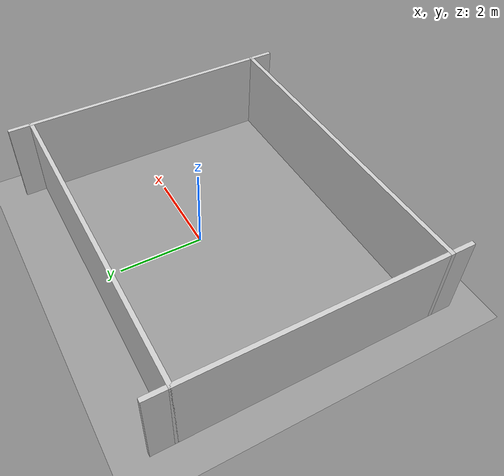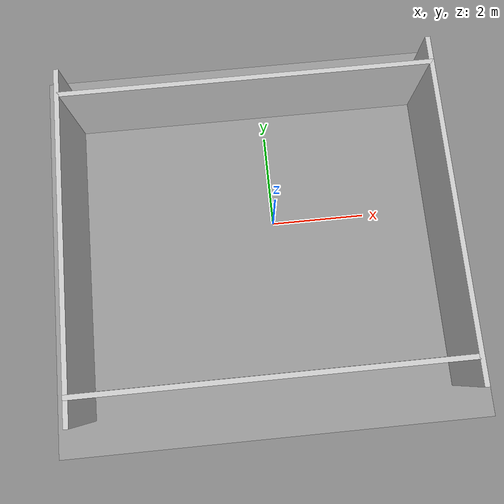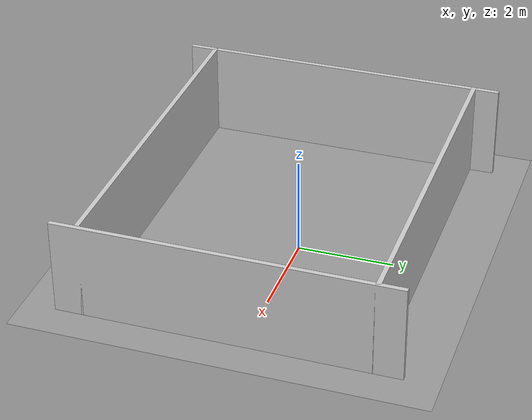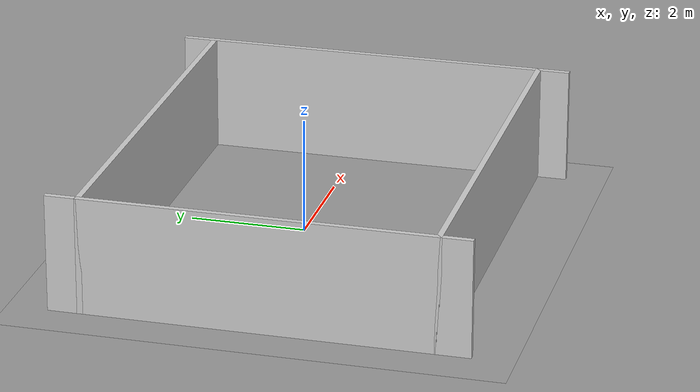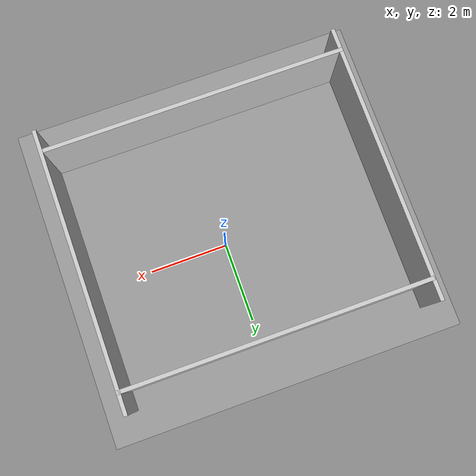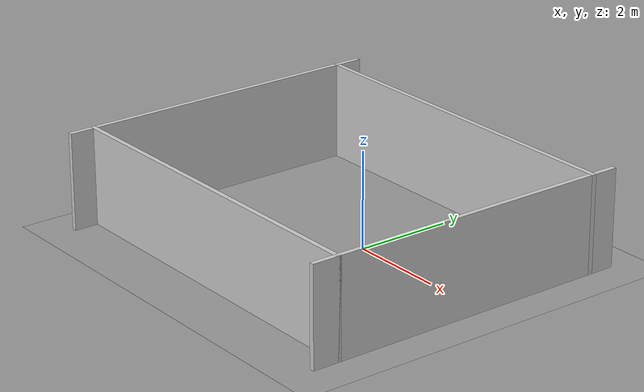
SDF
<?xml version="1.0" ?>
<sdf version="1.8">
  <world name="table_cube_world">
    <physics type="ode">
      <max_step_size>0.004</max_step_size>
      <real_time_factor>1.0</real_time_factor>
      <real_time_update_rate>250</real_time_update_rate>
    </physics>

    <plugin name="gz::sim::systems::Physics" filename="libgz-sim-physics-system.so"/>
    <plugin name="gz::sim::systems::UserCommands" filename="libgz-sim-user-commands-system.so"/>
    <plugin name="gz::sim::systems::SceneBroadcaster" filename="libgz-sim-scene-broadcaster-system.so"/>
    <!-- IMU sensors (the base IMU and the wrist ZED's) only publish with this system. -->
    <plugin name="gz::sim::systems::Imu" filename="libgz-sim-imu-system.so"/>
    <plugin name="gz::sim::systems::Sensors" filename="libgz-sim-sensors-system.so">
    <render_engine>ogre2</render_engine>
    </plugin>

    <light type="directional" name="sun">
      <!-- just activate for presentation, otherwise it is not needed -->
      <cast_shadows>false</cast_shadows>
      <pose>0 0 10 0 0 0</pose>
      <diffuse>0.8 0.8 0.8 1</diffuse>
      <specular>0.2 0.2 0.2 1</specular>
      <direction>-0.5 0.1 -0.9</direction>
    </light>

    <model name="ground_plane">
      <static>true</static>
      <link name="link">
        <collision name="collision">
          <geometry>
            <plane>
              <normal>0 0 1</normal>
            </plane>
          </geometry>
        </collision>
        <visual name="visual">
          <geometry>
            <plane>
              <normal>0 0 1</normal>
              <size>10 10</size>
            </plane>
          </geometry>
          <material>
            <ambient>0.6 0.6 0.6 1</ambient>
            <diffuse>0.6 0.6 0.6 1</diffuse>
          </material>
        </visual>
      </link>
    </model>

    <model name="wall_0">
      <static>true</static>
      <pose>3.45 -0.35 1.0 0 0 0</pose>
      <link name="link">
        <collision name="collision">
          <geometry>
            <box>
              <size>0.1 7.0 2</size>
            </box>
          </geometry>
        </collision>
        <visual name="visual">
          <geometry>
            <box>
              <size>0.1 7.0 2</size>
            </box>
          </geometry>
          <material>
            <ambient>0.8 0.8 0.8 1</ambient>
            <diffuse>0.8 0.8 0.8 1</diffuse>
          </material>
        </visual>
      </link>
    </model>
     <model name="wall_1">
      <static>true</static>
      <pose>-4.15 -0.35 1.0 0 0 0</pose>
      <link name="link">
        <collision name="collision">
          <geometry>
            <box>
              <size>0.1 7.0 2</size>
            </box>
          </geometry>
        </collision>
        <visual name="visual">
          <geometry>
            <box>
              <size>0.1 7.0 2</size>
            </box>
          </geometry>
          <material>
            <ambient>0.8 0.8 0.8 1</ambient>
            <diffuse>0.8 0.8 0.8 1</diffuse>
          </material>
        </visual>
      </link>
    </model>
    <model name="wall_2">
      <static>true</static>
      <pose>-0.35 2.6 1.0 0 0 1.5708</pose>
      <link name="link">
        <collision name="collision">
          <geometry>
            <box>
              <size>0.1 7.7 2</size>
            </box>
          </geometry>
        </collision>
        <visual name="visual">
          <geometry>
            <box>
              <size>0.1 7.7 2</size>
            </box>
          </geometry>
          <material>
            <ambient>0.8 0.8 0.8 1</ambient>
            <diffuse>0.8 0.8 0.8 1</diffuse>
          </material>
        </visual>
      </link>
    </model>
    <model name="wall_3">
      <static>true</static>
      <pose>-0.35 -3.3 1.0 0 0 -1.5708</pose>
      <link name="link">
        <collision name="collision">
          <geometry>
            <box>
              <size>0.1 7.7 2</size>
            </box>
          </geometry>
        </collision>
        <visual name="visual">
          <geometry>
            <box>
              <size>0.1 7.7 2</size>
            </box>
          </geometry>
          <material>
            <ambient>0.8 0.8 0.8 1</ambient>
            <diffuse>0.8 0.8 0.8 1</diffuse>
          </material>
        </visual>
      </link>
    </model>
  </world>
</sdf>
